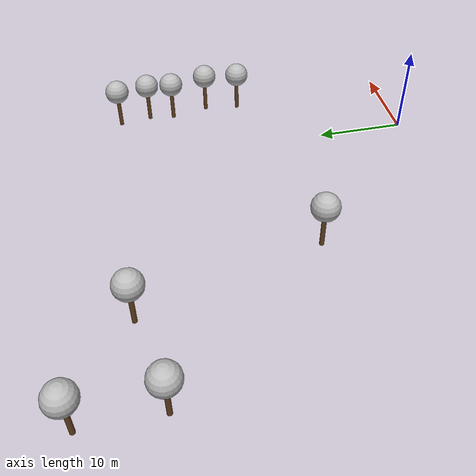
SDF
<sdf version="1.7">
 <world name="default">
  <model name="tree_simple_0_clone_0_clone_clone_4_clone">
   <static>1</static>
   <link name="link">
    <pose>0 0 0.1 0 -0 0</pose>
    <inertial>
     <mass>666</mass>
     <inertia>
      <ixx>0.0861167</ixx>
      <ixy>0</ixy>
      <ixz>0</ixz>
      <iyy>0.0861167</iyy>
      <iyz>0</iyz>
      <izz>0.0861167</izz>
     </inertia>
    </inertial>
    <collision name="collision_trunk">
     <pose>0 0 2 0 -0 0</pose>
     <geometry><cylinder><radius>0.25</radius><length>4</length></cylinder></geometry>
     <surface>
      <contact>
       <poissons_ratio>0.347</poissons_ratio>
       <elastic_modulus>8.8e+09</elastic_modulus>
       <ode><kp>100000</kp><kd>100</kd><max_vel>100</max_vel><min_depth>0.001</min_depth></ode>
      </contact>
      <friction>
       <torsional>
        <coefficient>1</coefficient>
        <use_patch_radius>0</use_patch_radius>
        <surface_radius>0.01</surface_radius>
       </torsional>
      </friction>
     </surface>
    </collision>
    <collision name="collision_treetop">
     <pose>0 0 5.2 0 -0 0</pose>
     <geometry><sphere><radius>1.5</radius></sphere></geometry>
     <surface>
      <contact>
       <poissons_ratio>0.347</poissons_ratio>
       <elastic_modulus>8.8e+09</elastic_modulus>
       <ode><kp>100000</kp><kd>100</kd><max_vel>100</max_vel><min_depth>0.001</min_depth></ode>
      </contact>
      <friction>
       <torsional>
        <coefficient>1</coefficient>
        <use_patch_radius>0</use_patch_radius>
        <surface_radius>0.01</surface_radius>
       </torsional>
      </friction>
     </surface>
    </collision>
    <visual name="trunk">
     <pose>0 0 2 0 -0 0</pose>
     <geometry><cylinder><radius>0.25</radius><length>4</length></cylinder></geometry>
     <material>
      <script>
       <uri>model://tree_simple/scripts</uri>
       <uri>model://tree_simple/materials/textures</uri>
       <name>TreeSimple/Trunk</name>
      </script>
     </material>
    </visual>
    <visual name="treetop">
     <pose>0 0 5.2 0 -0 0</pose>
     <geometry><sphere><radius>1.5</radius></sphere></geometry>
     <material>
      <script>
       <uri>model://tree_simple/scripts</uri>
       <uri>model://tree_simple/materials/textures</uri>
       <name>TreeSimple/Treetop</name>
      </script>
     </material>
    </visual>
   </link>
   <pose>-17.55 15.2092 0 0 -0 0</pose>
  </model>
  <model name="tree_simple_0_clone_0_clone_clone_2">
   <static>1</static>
   <link name="link">
    <pose>0 0 0.1 0 -0 0</pose>
    <inertial>
     <mass>666</mass>
     <inertia>
      <ixx>0.0861167</ixx>
      <ixy>0</ixy>
      <ixz>0</ixz>
      <iyy>0.0861167</iyy>
      <iyz>0</iyz>
      <izz>0.0861167</izz>
     </inertia>
    </inertial>
    <collision name="collision_trunk">
     <pose>0 0 2 0 -0 0</pose>
     <geometry><cylinder><radius>0.25</radius><length>4</length></cylinder></geometry>
     <surface>
      <contact>
       <poissons_ratio>0.347</poissons_ratio>
       <elastic_modulus>8.8e+09</elastic_modulus>
       <ode><kp>100000</kp><kd>100</kd><max_vel>100</max_vel><min_depth>0.001</min_depth></ode>
      </contact>
      <friction>
       <torsional>
        <coefficient>1</coefficient>
        <use_patch_radius>0</use_patch_radius>
        <surface_radius>0.01</surface_radius>
       </torsional>
      </friction>
     </surface>
    </collision>
    <collision name="collision_treetop">
     <pose>0 0 5.2 0 -0 0</pose>
     <geometry><sphere><radius>1.5</radius></sphere></geometry>
     <surface>
      <contact>
       <poissons_ratio>0.347</poissons_ratio>
       <elastic_modulus>8.8e+09</elastic_modulus>
       <ode><kp>100000</kp><kd>100</kd><max_vel>100</max_vel><min_depth>0.001</min_depth></ode>
      </contact>
      <friction>
       <torsional>
        <coefficient>1</coefficient>
        <use_patch_radius>0</use_patch_radius>
        <surface_radius>0.01</surface_radius>
       </torsional>
      </friction>
     </surface>
    </collision>
    <visual name="trunk">
     <pose>0 0 2 0 -0 0</pose>
     <geometry><cylinder><radius>0.25</radius><length>4</length></cylinder></geometry>
     <material>
      <script>
       <uri>model://tree_simple/scripts</uri>
       <uri>model://tree_simple/materials/textures</uri>
       <name>TreeSimple/Trunk</name>
      </script>
     </material>
    </visual>
    <visual name="treetop">
     <pose>0 0 5.2 0 -0 0</pose>
     <geometry><sphere><radius>1.5</radius></sphere></geometry>
     <material>
      <script>
       <uri>model://tree_simple/scripts</uri>
       <uri>model://tree_simple/materials/textures</uri>
       <name>TreeSimple/Treetop</name>
      </script>
     </material>
    </visual>
   </link>
   <pose>-23.2353 34.6148 0 0 -0 0</pose>
  </model>
  <model name="tree_simple_0_clone_0_clone_clone_7">
   <static>1</static>
   <link name="link">
    <pose>0 0 0.1 0 -0 0</pose>
    <inertial>
     <mass>666</mass>
     <inertia>
      <ixx>0.0861167</ixx>
      <ixy>0</ixy>
      <ixz>0</ixz>
      <iyy>0.0861167</iyy>
      <iyz>0</iyz>
      <izz>0.0861167</izz>
     </inertia>
    </inertial>
    <collision name="collision_trunk">
     <pose>0 0 2 0 -0 0</pose>
     <geometry><cylinder><radius>0.25</radius><length>4</length></cylinder></geometry>
     <surface>
      <contact>
       <poissons_ratio>0.347</poissons_ratio>
       <elastic_modulus>8.8e+09</elastic_modulus>
       <ode><kp>100000</kp><kd>100</kd><max_vel>100</max_vel><min_depth>0.001</min_depth></ode>
      </contact>
      <friction>
       <torsional>
        <coefficient>1</coefficient>
        <use_patch_radius>0</use_patch_radius>
        <surface_radius>0.01</surface_radius>
       </torsional>
      </friction>
     </surface>
    </collision>
    <collision name="collision_treetop">
     <pose>0 0 5.2 0 -0 0</pose>
     <geometry><sphere><radius>1.5</radius></sphere></geometry>
     <surface>
      <contact>
       <poissons_ratio>0.347</poissons_ratio>
       <elastic_modulus>8.8e+09</elastic_modulus>
       <ode><kp>100000</kp><kd>100</kd><max_vel>100</max_vel><min_depth>0.001</min_depth></ode>
      </contact>
      <friction>
       <torsional>
        <coefficient>1</coefficient>
        <use_patch_radius>0</use_patch_radius>
        <surface_radius>0.01</surface_radius>
       </torsional>
      </friction>
     </surface>
    </collision>
    <visual name="trunk">
     <pose>0 0 2 0 -0 0</pose>
     <geometry><cylinder><radius>0.25</radius><length>4</length></cylinder></geometry>
     <material>
      <script>
       <uri>model://tree_simple/scripts</uri>
       <uri>model://tree_simple/materials/textures</uri>
       <name>TreeSimple/Trunk</name>
      </script>
     </material>
    </visual>
    <visual name="treetop">
     <pose>0 0 5.2 0 -0 0</pose>
     <geometry><sphere><radius>1.5</radius></sphere></geometry>
     <material>
      <script>
       <uri>model://tree_simple/scripts</uri>
       <uri>model://tree_simple/materials/textures</uri>
       <name>TreeSimple/Treetop</name>
      </script>
     </material>
    </visual>
   </link>
   <pose>-32.8936 40.303 0 0 -0 0</pose>
  </model>
  <model name="tree_simple_0_clone_0_clone_clone_13">
   <static>1</static>
   <link name="link">
    <pose>0 0 0.1 0 -0 0</pose>
    <inertial>
     <mass>666</mass>
     <inertia>
      <ixx>0.0861167</ixx>
      <ixy>0</ixy>
      <ixz>0</ixz>
      <iyy>0.0861167</iyy>
      <iyz>0</iyz>
      <izz>0.0861167</izz>
     </inertia>
    </inertial>
    <collision name="collision_trunk">
     <pose>0 0 2 0 -0 0</pose>
     <geometry><cylinder><radius>0.25</radius><length>4</length></cylinder></geometry>
     <surface>
      <contact>
       <poissons_ratio>0.347</poissons_ratio>
       <elastic_modulus>8.8e+09</elastic_modulus>
       <ode><kp>100000</kp><kd>100</kd><max_vel>100</max_vel><min_depth>0.001</min_depth></ode>
      </contact>
      <friction>
       <torsional>
        <coefficient>1</coefficient>
        <use_patch_radius>0</use_patch_radius>
        <surface_radius>0.01</surface_radius>
       </torsional>
      </friction>
     </surface>
    </collision>
    <collision name="collision_treetop">
     <pose>0 0 5.2 0 -0 0</pose>
     <geometry><sphere><radius>1.5</radius></sphere></geometry>
     <surface>
      <contact>
       <poissons_ratio>0.347</poissons_ratio>
       <elastic_modulus>8.8e+09</elastic_modulus>
       <ode><kp>100000</kp><kd>100</kd><max_vel>100</max_vel><min_depth>0.001</min_depth></ode>
      </contact>
      <friction>
       <torsional>
        <coefficient>1</coefficient>
        <use_patch_radius>0</use_patch_radius>
        <surface_radius>0.01</surface_radius>
       </torsional>
      </friction>
     </surface>
    </collision>
    <visual name="trunk">
     <pose>0 0 2 0 -0 0</pose>
     <geometry><cylinder><radius>0.25</radius><length>4</length></cylinder></geometry>
     <material>
      <script>
       <uri>model://tree_simple/scripts</uri>
       <uri>model://tree_simple/materials/textures</uri>
       <name>TreeSimple/Trunk</name>
      </script>
     </material>
    </visual>
    <visual name="treetop">
     <pose>0 0 5.2 0 -0 0</pose>
     <geometry><sphere><radius>1.5</radius></sphere></geometry>
     <material>
      <script>
       <uri>model://tree_simple/scripts</uri>
       <uri>model://tree_simple/materials/textures</uri>
       <name>TreeSimple/Treetop</name>
      </script>
     </material>
    </visual>
   </link>
   <pose>-32.8828 32.6016 0 0 -0 0</pose>
  </model>
  <model name="tree_simple_0_clone_0_clone_clone_1_clone">
   <static>1</static>
   <link name="link">
    <pose>0 0 0.1 0 -0 0</pose>
    <inertial>
     <mass>666</mass>
     <inertia>
      <ixx>0.0861167</ixx>
      <ixy>0</ixy>
      <ixz>0</ixz>
      <iyy>0.0861167</iyy>
      <iyz>0</iyz>
      <izz>0.0861167</izz>
     </inertia>
    </inertial>
    <collision name="collision_trunk">
     <pose>0 0 2 0 -0 0</pose>
     <geometry><cylinder><radius>0.25</radius><length>4</length></cylinder></geometry>
     <surface>
      <contact>
       <poissons_ratio>0.347</poissons_ratio>
       <elastic_modulus>8.8e+09</elastic_modulus>
       <ode><kp>100000</kp><kd>100</kd><max_vel>100</max_vel><min_depth>0.001</min_depth></ode>
      </contact>
      <friction>
       <torsional>
        <coefficient>1</coefficient>
        <use_patch_radius>0</use_patch_radius>
        <surface_radius>0.01</surface_radius>
       </torsional>
      </friction>
     </surface>
    </collision>
    <collision name="collision_treetop">
     <pose>0 0 5.2 0 -0 0</pose>
     <geometry><sphere><radius>1.5</radius></sphere></geometry>
     <surface>
      <contact>
       <poissons_ratio>0.347</poissons_ratio>
       <elastic_modulus>8.8e+09</elastic_modulus>
       <ode><kp>100000</kp><kd>100</kd><max_vel>100</max_vel><min_depth>0.001</min_depth></ode>
      </contact>
      <friction>
       <torsional>
        <coefficient>1</coefficient>
        <use_patch_radius>0</use_patch_radius>
        <surface_radius>0.01</surface_radius>
       </torsional>
      </friction>
     </surface>
    </collision>
    <visual name="trunk">
     <pose>0 0 2 0 -0 0</pose>
     <geometry><cylinder><radius>0.25</radius><length>4</length></cylinder></geometry>
     <material>
      <script>
       <uri>model://tree_simple/scripts</uri>
       <uri>model://tree_simple/materials/textures</uri>
       <name>TreeSimple/Trunk</name>
      </script>
     </material>
    </visual>
    <visual name="treetop">
     <pose>0 0 5.2 0 -0 0</pose>
     <geometry><sphere><radius>1.5</radius></sphere></geometry>
     <material>
      <script>
       <uri>model://tree_simple/scripts</uri>
       <uri>model://tree_simple/materials/textures</uri>
       <name>TreeSimple/Treetop</name>
      </script>
     </material>
    </visual>
   </link>
   <pose>13.3682 26.7498 -4.27467 0 -0 0</pose>
  </model>
  <model name="tree_simple_0_clone_0_clone_clone_1_clone_clone">
   <static>1</static>
   <link name="link">
    <pose>0 0 0.1 0 -0 0</pose>
    <inertial>
     <mass>666</mass>
     <inertia>
      <ixx>0.0861167</ixx>
      <ixy>0</ixy>
      <ixz>0</ixz>
      <iyy>0.0861167</iyy>
      <iyz>0</iyz>
      <izz>0.0861167</izz>
     </inertia>
    </inertial>
    <collision name="collision_trunk">
     <pose>0 0 2 0 -0 0</pose>
     <geometry><cylinder><radius>0.25</radius><length>4</length></cylinder></geometry>
     <surface>
      <contact>
       <poissons_ratio>0.347</poissons_ratio>
       <elastic_modulus>8.8e+09</elastic_modulus>
       <ode><kp>100000</kp><kd>100</kd><max_vel>100</max_vel><min_depth>0.001</min_depth></ode>
      </contact>
      <friction>
       <torsional>
        <coefficient>1</coefficient>
        <use_patch_radius>0</use_patch_radius>
        <surface_radius>0.01</surface_radius>
       </torsional>
      </friction>
     </surface>
    </collision>
    <collision name="collision_treetop">
     <pose>0 0 5.2 0 -0 0</pose>
     <geometry><sphere><radius>1.5</radius></sphere></geometry>
     <surface>
      <contact>
       <poissons_ratio>0.347</poissons_ratio>
       <elastic_modulus>8.8e+09</elastic_modulus>
       <ode><kp>100000</kp><kd>100</kd><max_vel>100</max_vel><min_depth>0.001</min_depth></ode>
      </contact>
      <friction>
       <torsional>
        <coefficient>1</coefficient>
        <use_patch_radius>0</use_patch_radius>
        <surface_radius>0.01</surface_radius>
       </torsional>
      </friction>
     </surface>
    </collision>
    <visual name="trunk">
     <pose>0 0 2 0 -0 0</pose>
     <geometry><cylinder><radius>0.25</radius><length>4</length></cylinder></geometry>
     <material>
      <script>
       <uri>model://tree_simple/scripts</uri>
       <uri>model://tree_simple/materials/textures</uri>
       <name>TreeSimple/Trunk</name>
      </script>
     </material>
    </visual>
    <visual name="treetop">
     <pose>0 0 5.2 0 -0 0</pose>
     <geometry><sphere><radius>1.5</radius></sphere></geometry>
     <material>
      <script>
       <uri>model://tree_simple/scripts</uri>
       <uri>model://tree_simple/materials/textures</uri>
       <name>TreeSimple/Treetop</name>
      </script>
     </material>
    </visual>
   </link>
   <pose>14.4464 29.8971 -4.7457 0 -0 0</pose>
  </model>
  <model name="tree_simple_0_clone_0_clone_clone_1_clone_clone_0">
   <static>1</static>
   <link name="link">
    <pose>0 0 0.1 0 -0 0</pose>
    <inertial>
     <mass>666</mass>
     <inertia>
      <ixx>0.0861167</ixx>
      <ixy>0</ixy>
      <ixz>0</ixz>
      <iyy>0.0861167</iyy>
      <iyz>0</iyz>
      <izz>0.0861167</izz>
     </inertia>
    </inertial>
    <collision name="collision_trunk">
     <pose>0 0 2 0 -0 0</pose>
     <geometry><cylinder><radius>0.25</radius><length>4</length></cylinder></geometry>
     <surface>
      <contact>
       <poissons_ratio>0.347</poissons_ratio>
       <elastic_modulus>8.8e+09</elastic_modulus>
       <ode><kp>100000</kp><kd>100</kd><max_vel>100</max_vel><min_depth>0.001</min_depth></ode>
      </contact>
      <friction>
       <torsional>
        <coefficient>1</coefficient>
        <use_patch_radius>0</use_patch_radius>
        <surface_radius>0.01</surface_radius>
       </torsional>
      </friction>
     </surface>
    </collision>
    <collision name="collision_treetop">
     <pose>0 0 5.2 0 -0 0</pose>
     <geometry><sphere><radius>1.5</radius></sphere></geometry>
     <surface>
      <contact>
       <poissons_ratio>0.347</poissons_ratio>
       <elastic_modulus>8.8e+09</elastic_modulus>
       <ode><kp>100000</kp><kd>100</kd><max_vel>100</max_vel><min_depth>0.001</min_depth></ode>
      </contact>
      <friction>
       <torsional>
        <coefficient>1</coefficient>
        <use_patch_radius>0</use_patch_radius>
        <surface_radius>0.01</surface_radius>
       </torsional>
      </friction>
     </surface>
    </collision>
    <visual name="trunk">
     <pose>0 0 2 0 -0 0</pose>
     <geometry><cylinder><radius>0.25</radius><length>4</length></cylinder></geometry>
     <material>
      <script>
       <uri>model://tree_simple/scripts</uri>
       <uri>model://tree_simple/materials/textures</uri>
       <name>TreeSimple/Trunk</name>
      </script>
     </material>
    </visual>
    <visual name="treetop">
     <pose>0 0 5.2 0 -0 0</pose>
     <geometry><sphere><radius>1.5</radius></sphere></geometry>
     <material>
      <script>
       <uri>model://tree_simple/scripts</uri>
       <uri>model://tree_simple/materials/textures</uri>
       <name>TreeSimple/Treetop</name>
      </script>
     </material>
    </visual>
   </link>
   <pose>13.8006 33.8613 -4.7457 0 -0 0</pose>
  </model>
  <model name="tree_simple_0_clone_0_clone_clone_1_clone_clone_1">
   <static>1</static>
   <link name="link">
    <pose>0 0 0.1 0 -0 0</pose>
    <inertial>
     <mass>666</mass>
     <inertia>
      <ixx>0.0861167</ixx>
      <ixy>0</ixy>
      <ixz>0</ixz>
      <iyy>0.0861167</iyy>
      <iyz>0</iyz>
      <izz>0.0861167</izz>
     </inertia>
    </inertial>
    <collision name="collision_trunk">
     <pose>0 0 2 0 -0 0</pose>
     <geometry><cylinder><radius>0.25</radius><length>4</length></cylinder></geometry>
     <surface>
      <contact>
       <poissons_ratio>0.347</poissons_ratio>
       <elastic_modulus>8.8e+09</elastic_modulus>
       <ode><kp>100000</kp><kd>100</kd><max_vel>100</max_vel><min_depth>0.001</min_depth></ode>
      </contact>
      <friction>
       <torsional>
        <coefficient>1</coefficient>
        <use_patch_radius>0</use_patch_radius>
        <surface_radius>0.01</surface_radius>
       </torsional>
      </friction>
     </surface>
    </collision>
    <collision name="collision_treetop">
     <pose>0 0 5.2 0 -0 0</pose>
     <geometry><sphere><radius>1.5</radius></sphere></geometry>
     <surface>
      <contact>
       <poissons_ratio>0.347</poissons_ratio>
       <elastic_modulus>8.8e+09</elastic_modulus>
       <ode><kp>100000</kp><kd>100</kd><max_vel>100</max_vel><min_depth>0.001</min_depth></ode>
      </contact>
      <friction>
       <torsional>
        <coefficient>1</coefficient>
        <use_patch_radius>0</use_patch_radius>
        <surface_radius>0.01</surface_radius>
       </torsional>
      </friction>
     </surface>
    </collision>
    <visual name="trunk">
     <pose>0 0 2 0 -0 0</pose>
     <geometry><cylinder><radius>0.25</radius><length>4</length></cylinder></geometry>
     <material>
      <script>
       <uri>model://tree_simple/scripts</uri>
       <uri>model://tree_simple/materials/textures</uri>
       <name>TreeSimple/Trunk</name>
      </script>
     </material>
    </visual>
    <visual name="treetop">
     <pose>0 0 5.2 0 -0 0</pose>
     <geometry><sphere><radius>1.5</radius></sphere></geometry>
     <material>
      <script>
       <uri>model://tree_simple/scripts</uri>
       <uri>model://tree_simple/materials/textures</uri>
       <name>TreeSimple/Treetop</name>
      </script>
     </material>
    </visual>
   </link>
   <pose>14.4798 22.0908 -4.27467 0 -0 0</pose>
  </model>
  <model name="tree_simple_0_clone_0_clone_clone_1_clone_clone_2">
   <static>1</static>
   <link name="link">
    <pose>0 0 0.1 0 -0 0</pose>
    <inertial>
     <mass>666</mass>
     <inertia>
      <ixx>0.0861167</ixx>
      <ixy>0</ixy>
      <ixz>0</ixz>
      <iyy>0.0861167</iyy>
      <iyz>0</iyz>
      <izz>0.0861167</izz>
     </inertia>
    </inertial>
    <collision name="collision_trunk">
     <pose>0 0 2 0 -0 0</pose>
     <geometry><cylinder><radius>0.25</radius><length>4</length></cylinder></geometry>
     <surface>
      <contact>
       <poissons_ratio>0.347</poissons_ratio>
       <elastic_modulus>8.8e+09</elastic_modulus>
       <ode><kp>100000</kp><kd>100</kd><max_vel>100</max_vel><min_depth>0.001</min_depth></ode>
      </contact>
      <friction>
       <torsional>
        <coefficient>1</coefficient>
        <use_patch_radius>0</use_patch_radius>
        <surface_radius>0.01</surface_radius>
       </torsional>
      </friction>
     </surface>
    </collision>
    <collision name="collision_treetop">
     <pose>0 0 5.2 0 -0 0</pose>
     <geometry><sphere><radius>1.5</radius></sphere></geometry>
     <surface>
      <contact>
       <poissons_ratio>0.347</poissons_ratio>
       <elastic_modulus>8.8e+09</elastic_modulus>
       <ode><kp>100000</kp><kd>100</kd><max_vel>100</max_vel><min_depth>0.001</min_depth></ode>
      </contact>
      <friction>
       <torsional>
        <coefficient>1</coefficient>
        <use_patch_radius>0</use_patch_radius>
        <surface_radius>0.01</surface_radius>
       </torsional>
      </friction>
     </surface>
    </collision>
    <visual name="trunk">
     <pose>0 0 2 0 -0 0</pose>
     <geometry><cylinder><radius>0.25</radius><length>4</length></cylinder></geometry>
     <material>
      <script>
       <uri>model://tree_simple/scripts</uri>
       <uri>model://tree_simple/materials/textures</uri>
       <name>TreeSimple/Trunk</name>
      </script>
     </material>
    </visual>
    <visual name="treetop">
     <pose>0 0 5.2 0 -0 0</pose>
     <geometry><sphere><radius>1.5</radius></sphere></geometry>
     <material>
      <script>
       <uri>model://tree_simple/scripts</uri>
       <uri>model://tree_simple/materials/textures</uri>
       <name>TreeSimple/Treetop</name>
      </script>
     </material>
    </visual>
   </link>
   <pose>13.9771 17.7579 -4.27467 0 -0 0</pose>
  </model>
 </world>
</sdf>
